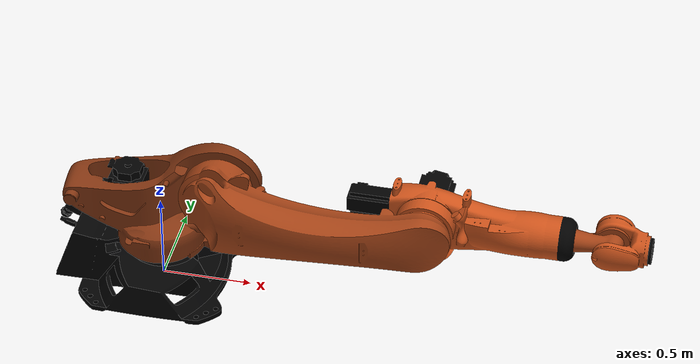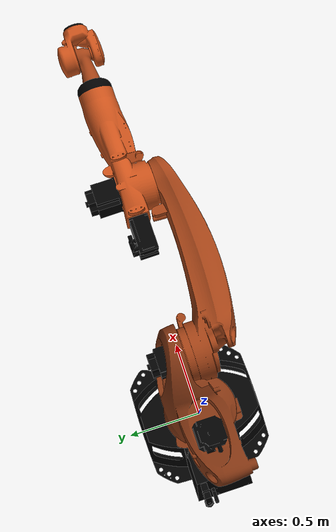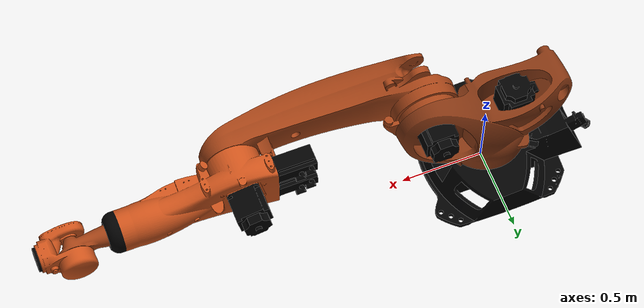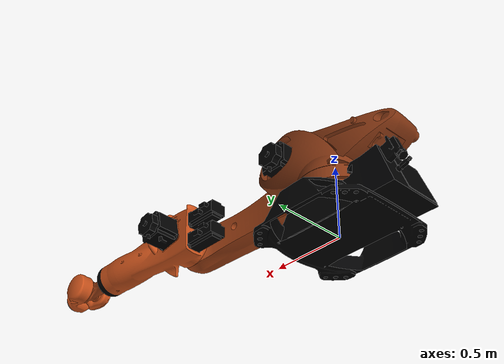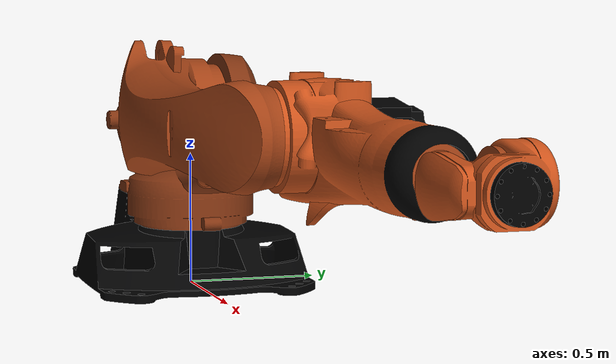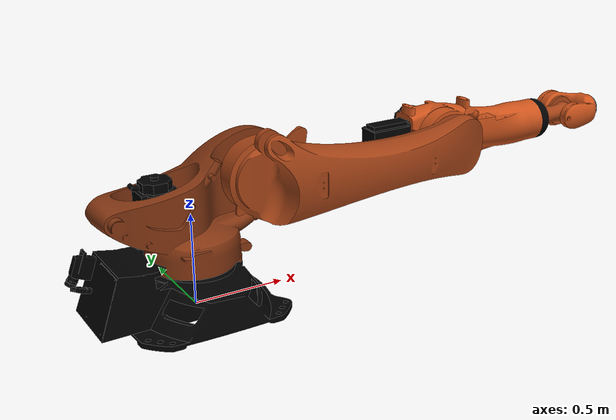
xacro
<?xml version="1.0"?>
<!--Generates a urdf from the macro in kr120r2500pro_macro.xacro -->
<robot name="kuka_kr120r2500pro" xmlns:xacro="http://wiki.ros.org/xacro">
  <xacro:arg name="prefix" default="" />

    <xacro:include filename="$(find kuka_kr120_support)/urdf/kr120r2500pro_macro.xacro" />

    <xacro:kuka_kr120r2500pro prefix=""/>
</robot>

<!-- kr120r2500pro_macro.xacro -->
<robot xmlns:xacro="http://wiki.ros.org/xacro">

  <xacro:macro name="kuka_kr120r2500pro" params="prefix">
    <!-- LINKS -->
    <!-- base link -->
    <link name="${prefix}base_link">
      <inertial>
        <origin xyz="0 0 0" rpy="0 0 0"/>
        <mass value="2"/>
        <inertia ixx="0.01" ixy="0" ixz="0" iyy="0.01" iyz="0" izz="0.01" />
      </inertial>
      <visual>
        <origin xyz="0 0 0" rpy="0 0 0"/>
        <geometry>
          <mesh filename="package://kuka_kr120_support/meshes/kr120r2500pro/visual/base_link.dae" />
        </geometry>
      </visual>
      <collision>
        <origin xyz="0 0 0" rpy="0 0 0"/>
        <geometry>
          <mesh filename="package://kuka_kr120_support/meshes/kr120r2500pro/collision/base_link.stl" />
        </geometry>
      </collision>
    </link>
    <!-- link 1 (A1) -->
    <link name="${prefix}link_1">
      <inertial>
        <origin xyz="0 0 0" rpy="0 0 0"/>
        <mass value="2"/>
        <inertia ixx="0.01" ixy="0" ixz="0" iyy="0.01" iyz="0" izz="0.01" />
      </inertial>
      <visual>
        <origin xyz="0 0 0" rpy="0 0 0"/>
        <geometry>
          <mesh filename="package://kuka_kr120_support/meshes/kr120r2500pro/visual/link_1.dae" />
        </geometry>
      </visual>
      <collision>
        <origin xyz="0 0 0" rpy="0 0 0"/>
        <geometry>
          <mesh filename="package://kuka_kr120_support/meshes/kr120r2500pro/collision/link_1.stl" />
        </geometry>
      </collision>
    </link>
    <!-- link 2 -->
    <link name="${prefix}link_2">
      <inertial>
        <origin xyz="0 0 0" rpy="0 0 0"/>
        <mass value="2"/>
        <inertia ixx="0.01" ixy="0" ixz="0" iyy="0.01" iyz="0" izz="0.01" />
      </inertial>
      <visual>
        <origin xyz="0 0 0" rpy="0 0 0"/>
        <geometry>
          <mesh filename="package://kuka_kr120_support/meshes/kr120r2500pro/visual/link_2.dae"/>
        </geometry>
      </visual>
      <collision>
        <origin xyz="0 0 0" rpy="0 0 0"/>
        <geometry>
          <mesh filename="package://kuka_kr120_support/meshes/kr120r2500pro/collision/link_2.stl" />
        </geometry>
      </collision>
    </link>
    <!-- link 3 -->
    <link name="${prefix}link_3">
      <inertial>
        <origin xyz="0 0 0" rpy="0 0 0"/>
        <mass value="2"/>
        <inertia ixx="0.01" ixy="0" ixz="0" iyy="0.01" iyz="0" izz="0.01" />
      </inertial>
      <visual>
        <origin xyz="0 0 0" rpy="0 0 0"/>
        <geometry>
          <mesh filename="package://kuka_kr120_support/meshes/kr120r2500pro/visual/link_3.dae" />
        </geometry>
      </visual>
      <collision>
        <origin xyz="0 0 0" rpy="0 0 0"/>
        <geometry>
          <mesh filename="package://kuka_kr120_support/meshes/kr120r2500pro/collision/link_3.stl" />
        </geometry>
      </collision>
    </link>
    <!-- link 4 -->
    <link name="${prefix}link_4">
      <inertial>
        <origin xyz="0 0 0" rpy="0 0 0"/>
        <mass value="2"/>
        <inertia ixx="0.01" ixy="0" ixz="0" iyy="0.01" iyz="0" izz="0.01" />
      </inertial>
      <visual>
        <origin xyz="0 0 0" rpy="0 0 0"/>
        <geometry>
          <mesh filename="package://kuka_kr120_support/meshes/kr120r2500pro/visual/link_4.dae" />
        </geometry>
      </visual>
      <collision>
        <origin xyz="0 0 0" rpy="0 0 0"/>
        <geometry>
          <mesh filename="package://kuka_kr120_support/meshes/kr120r2500pro/collision/link_4.stl" />
        </geometry>
      </collision>
    </link>
    <!-- link 5 -->
    <link name="${prefix}link_5">
      <inertial>
        <origin xyz="0 0 0" rpy="0 0 0"/>
        <mass value="2"/>
        <inertia ixx="0.01" ixy="0" ixz="0" iyy="0.01" iyz="0" izz="0.01" />
      </inertial>
      <visual>
        <origin xyz="0 0 0" rpy="0 0 0"/>
        <geometry>
          <mesh filename="package://kuka_kr120_support/meshes/kr120r2500pro/visual/link_5.dae" />
        </geometry>
      </visual>
      <collision>
        <origin xyz="0 0 0" rpy="0 0 0"/>
        <geometry>
          <mesh filename="package://kuka_kr120_support/meshes/kr120r2500pro/collision/link_5.stl" />
        </geometry>
      </collision>
    </link>
    <!-- link 6 -->
    <link name="${prefix}link_6">
      <inertial>
        <origin xyz="0 0 0" rpy="0 0 0"/>
        <mass value="2"/>
        <inertia ixx="0.01" ixy="0" ixz="0" iyy="0.01" iyz="0" izz="0.01" />
      </inertial>
      <visual>
        <origin xyz="0 0 0" rpy="0 0 0"/>
        <geometry>
          <mesh filename="package://kuka_kr120_support/meshes/kr120r2500pro/visual/link_6.dae" />
        </geometry>
      </visual>
      <collision>
        <origin xyz="0 0 0" rpy="0 0 0"/>
        <geometry>
          <mesh filename="package://kuka_kr120_support/meshes/kr120r2500pro/collision/link_6.stl" />
        </geometry>
      </collision>
    </link>
    <!-- Following REP199, this frame shall be use to attach EEF or other equipment -->
    <link name="${prefix}flange" />
    <!-- END LINKS -->

    <!-- JOINTS -->
    <!-- joint 1 (A1) -->
    <joint name="${prefix}joint_a1" type="revolute">
      <origin xyz="0 0 0.675" rpy="0 0 0"/>
      <parent link="${prefix}base_link"/>
      <child link="${prefix}link_1"/>
      <axis xyz="0 0 -1"/>
      <limit effort="0" lower="${-radians(185)}" upper="${radians(185)}" velocity="${radians(156)}"/>
    </joint>
    <!-- joint 2 (A2) -->
    <joint name="${prefix}joint_a2" type="revolute">
      <origin xyz="0.35 0 0" rpy="0 0 0"/>
      <parent link="${prefix}link_1"/>
      <child link="${prefix}link_2"/>
      <axis xyz="0 1 0"/>
      <limit effort="0" lower="${-radians(155)}" upper="${radians(35)}" velocity="${radians(156)}"/>
    </joint>
    <!-- joint 3 (A3) -->
    <joint name="${prefix}joint_a3" type="revolute">
      <origin xyz="1.150 0 0" rpy="0 0 0"/>
      <parent link="${prefix}link_2"/>
      <child link="${prefix}link_3"/>
      <axis xyz="0 1 0"/>
      <limit effort="0" lower="${-radians(130)}" upper="${radians(154)}" velocity="${radians(156)}"/>
    </joint>
    <!-- joint 4 (A4) -->
    <joint name="${prefix}joint_a4" type="revolute">
      <origin xyz="1.0 0 -0.041" rpy="0 0 0"/>
      <parent link="${prefix}link_3"/>
      <child link="${prefix}link_4"/>
      <axis xyz="-1 0 0"/>
      <limit effort="0" lower="${-radians(350)}" upper="${radians(350)}" velocity="${radians(330)}"/>
    </joint>
    <!-- joint 5 (A5) -->
    <joint name="${prefix}joint_a5" type="revolute">
      <origin xyz="0 0 0" rpy="0 0 0"/>
      <parent link="${prefix}link_4"/>
      <child link="${prefix}link_5"/>
      <axis xyz="0 1 0"/>
      <limit effort="0" lower="${-radians(130)}" upper="${radians(130)}" velocity="${radians(330)}"/>
    </joint>
    <!-- joint 6 (A6) -->
    <joint name="${prefix}joint_a6" type="revolute">
      <origin xyz="0 0 0" rpy="0 0 0"/>
      <parent link="${prefix}link_5"/>
      <child link="${prefix}link_6"/>
      <axis xyz="-1 0 0"/>
      <limit effort="0" lower="${-radians(350)}" upper="${radians(350)}" velocity="${radians(615)}"/>
    </joint>
    <!-- tool frame - fixed frame -->
    <joint name="${prefix}joint_a6-flange" type="fixed">
      <parent link="${prefix}link_6"/>
      <child link="${prefix}flange"/>
      <origin xyz="0.215 0 0" rpy="0 0 0"/>
    </joint>
    <!-- END JOINTS -->

    <!-- ROS base_link to KUKA $ROBROOT coordinate system transform -->
    <link name="${prefix}base" />
    <joint name="${prefix}base_link-base" type="fixed">
      <origin xyz="0 0 0" rpy="0 0 0"/>
      <parent link="${prefix}base_link"/>
      <child link="${prefix}base"/>
    </joint>

    <!-- This frame corresponds to the $TOOL coordinate system in KUKA KRC controllers -->
    <link name="${prefix}tool0" />
    <joint name="${prefix}flange-tool0" type="fixed">
      <parent link="${prefix}flange"/>
      <child link="${prefix}tool0"/>
      <origin xyz="0 0 0" rpy="0 ${radians(90)} 0"/>
    </joint>
  </xacro:macro>
</robot>
